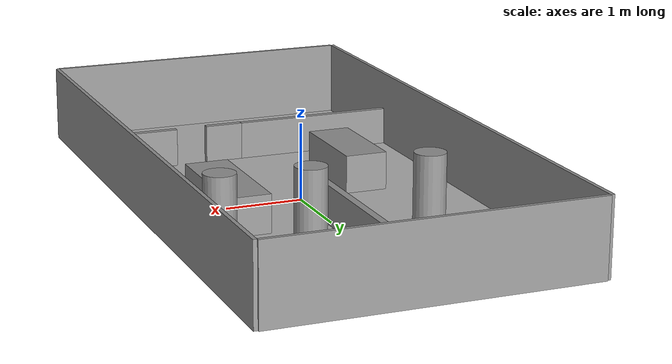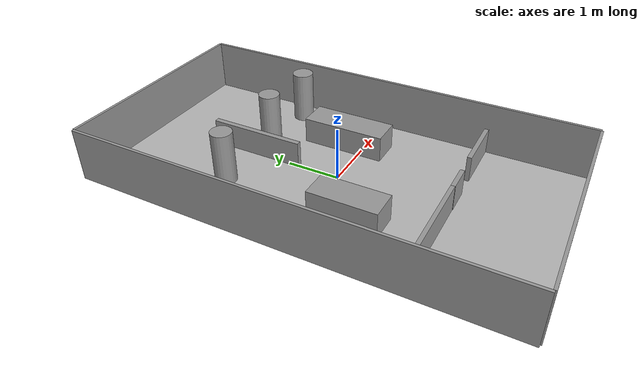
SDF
<sdf version="1.7">
 <world name="patrol_world">
  <light name="sun" type="directional">
   <pose>0 0 10 0 -0 0</pose>
   <diffuse>0.8 0.8 0.8 1</diffuse>
   <specular>0.2 0.2 0.2 1</specular>
   <attenuation>
    <range>1000</range>
    <constant>0.9</constant>
    <linear>0.01</linear>
    <quadratic>0.001</quadratic>
   </attenuation>
   <direction>-0.5 0.1 -0.9</direction>
   <spot><inner_angle>0</inner_angle><outer_angle>0</outer_angle><falloff>0</falloff></spot>
  </light>
  <model name="ground_plane">
   <static>1</static>
   <link name="link">
    <collision name="collision">
     <geometry><plane><normal>0 0 1</normal><size>100 100</size></plane></geometry>
     <surface>
      <contact><collide_bitmask>65535</collide_bitmask></contact>
      <friction><ode><mu>100</mu><mu2>50</mu2></ode></friction>
     </surface>
    </collision>
    <visual name="visual">
     <cast_shadows>0</cast_shadows>
     <geometry><box><size>4.11667 8.06667 0.01</size></box></geometry>
     <material>
      <script>
       <uri>/home/dongyanqi/catkin_ws/src/simulator_gazebo/materials/scripts/patrol_region_map.material</uri>
       <name>GroundPlane/Image/patrol</name>
      </script>
     </material>
    </visual>
   </link>
  </model>
  <gravity>0 0 -9.8</gravity>
  <magnetic_field>6e-06 2.3e-05 -4.2e-05</magnetic_field>
  <atmosphere type="adiabatic"/>
  <physics type="ode">
   <max_step_size>0.001</max_step_size>
   <real_time_factor>1</real_time_factor>
   <real_time_update_rate>1000</real_time_update_rate>
  </physics>
  <scene><ambient>0.4 0.4 0.4 1</ambient><background>0.7 0.7 0.7 1</background><shadows>1</shadows></scene>
  <spherical_coordinates>
   <surface_model>EARTH_WGS84</surface_model>
   <latitude_deg>0</latitude_deg>
   <longitude_deg>0</longitude_deg>
   <elevation>0</elevation>
   <heading_deg>0</heading_deg>
  </spherical_coordinates>
  <model name="Box_0">
   <pose>0.310021 -2.09681 0 4e-06 -0 -1.6e-05</pose>
   <link name="Box_0_link">
    <collision name="Box_0_Collision">
     <pose>0 0 0.25 0 -0 0</pose>
     <geometry><box><size>0.502388 0.08363 0.5</size></box></geometry>
    </collision>
    <visual name="Box_0_Visual">
     <pose>0 0 0.25 0 -0 0</pose>
     <geometry><box><size>0.502388 0.08363 0.5</size></box></geometry>
     <material>
      <script><uri>file://media/materials/scripts/gazebo.material</uri><name>Gazebo/Grey</name></script>
      <ambient>1 1 1 1</ambient>
     </material>
     <meta><layer>0</layer></meta>
    </visual>
    <inertial>
     <inertia><ixx>1</ixx><ixy>0</ixy><ixz>0</ixz><iyy>1</iyy><iyz>0</iyz><izz>1</izz></inertia>
     <mass>1</mass>
    </inertial>
   </link>
  </model>
  <model name="Box_1">
   <pose>-1.00016 -2.09377 1e-06 -1.7e-05 -0 3e-06</pose>
   <link name="Box_1_link">
    <collision name="Box_1_Collision">
     <pose>0 0 0.25 0 -0 0</pose>
     <geometry><box><size>2.11796 0.076717 0.5</size></box></geometry>
    </collision>
    <visual name="Box_1_Visual">
     <pose>0 0 0.25 0 -0 0</pose>
     <geometry><box><size>2.11796 0.076717 0.5</size></box></geometry>
     <material>
      <script><uri>file://media/materials/scripts/gazebo.material</uri><name>Gazebo/Grey</name></script>
      <ambient>1 1 1 1</ambient>
     </material>
     <meta><layer>0</layer></meta>
    </visual>
    <inertial>
     <inertia><ixx>1</ixx><ixy>0</ixy><ixz>0</ixz><iyy>1</iyy><iyz>0</iyz><izz>1</izz></inertia>
     <mass>1</mass>
    </inertial>
   </link>
  </model>
  <model name="Box_2">
   <pose>1.51953 -2.08743 0 3e-06 -0 0</pose>
   <link name="Box_2_link">
    <collision name="Box_2_Collision">
     <pose>0 0 0.25 0 -0 0</pose>
     <geometry><box><size>1.07998 0.084133 0.5</size></box></geometry>
    </collision>
    <visual name="Box_2_Visual">
     <pose>0 0 0.25 0 -0 0</pose>
     <geometry><box><size>1.07998 0.084133 0.5</size></box></geometry>
     <material>
      <script><uri>file://media/materials/scripts/gazebo.material</uri><name>Gazebo/Grey</name></script>
      <ambient>1 1 1 1</ambient>
     </material>
     <meta><layer>0</layer></meta>
    </visual>
    <inertial>
     <inertia><ixx>1</ixx><ixy>0</ixy><ixz>0</ixz><iyy>1</iyy><iyz>0</iyz><izz>1</izz></inertia>
     <mass>1</mass>
    </inertial>
   </link>
  </model>
  <model name="Box_3">
   <pose>-0.914501 -0.675263 -0 0 -0 0</pose>
   <link name="Box_3_link">
    <collision name="Box_3_Collision">
     <pose>0 0 0.25 0 -0 0</pose>
     <geometry><box><size>0.554554 1.28166 0.5</size></box></geometry>
    </collision>
    <visual name="Box_3_Visual">
     <pose>0 0 0.25 0 -0 0</pose>
     <geometry><box><size>0.554554 1.28166 0.5</size></box></geometry>
     <material>
      <script><uri>file://media/materials/scripts/gazebo.material</uri><name>Gazebo/Grey</name></script>
      <ambient>1 1 1 1</ambient>
     </material>
     <meta><layer>0</layer></meta>
    </visual>
    <inertial>
     <inertia><ixx>1</ixx><ixy>0</ixy><ixz>0</ixz><iyy>1</iyy><iyz>0</iyz><izz>1</izz></inertia>
     <mass>1</mass>
    </inertial>
   </link>
  </model>
  <model name="Box_4">
   <pose>1.10544 0.333134 -0 0 -0 0</pose>
   <link name="Box_4_link">
    <collision name="Box_4_Collision">
     <pose>0 0 0.25 0 -0 0</pose>
     <geometry><box><size>0.56341 1.58116 0.5</size></box></geometry>
    </collision>
    <visual name="Box_4_Visual">
     <pose>0 0 0.25 0 -0 0</pose>
     <geometry><box><size>0.56341 1.58116 0.5</size></box></geometry>
     <material>
      <script><uri>file://media/materials/scripts/gazebo.material</uri><name>Gazebo/Grey</name></script>
      <ambient>1 1 1 1</ambient>
     </material>
     <meta><layer>0</layer></meta>
    </visual>
    <inertial>
     <inertia><ixx>1</ixx><ixy>0</ixy><ixz>0</ixz><iyy>1</iyy><iyz>0</iyz><izz>1</izz></inertia>
     <mass>1</mass>
    </inertial>
   </link>
  </model>
  <model name="Box_5">
   <pose>0.014986 1.71319 -0 0 -1e-06 0</pose>
   <link name="Box_5_link">
    <collision name="Box_5_Collision">
     <pose>0 0 0.25 0 -0 0</pose>
     <geometry><box><size>0.097486 1.83034 0.5</size></box></geometry>
    </collision>
    <visual name="Box_5_Visual">
     <pose>0 0 0.25 0 -0 0</pose>
     <geometry><box><size>0.097486 1.83034 0.5</size></box></geometry>
     <material>
      <script><uri>file://media/materials/scripts/gazebo.material</uri><name>Gazebo/Grey</name></script>
      <ambient>1 1 1 1</ambient>
     </material>
     <meta><layer>0</layer></meta>
    </visual>
    <inertial>
     <inertia><ixx>1</ixx><ixy>0</ixy><ixz>0</ixz><iyy>1</iyy><iyz>0</iyz><izz>1</izz></inertia>
     <mass>1</mass>
    </inertial>
   </link>
  </model>
  <model name="Boundary_0">
   <pose>0.003338 -4.02536 0 7e-06 -0 5e-06</pose>
   <link name="Boundary_0_link">
    <collision name="Boundary_0_Collision">
     <pose>0 0 0.5 0 -0 0</pose>
     <geometry><box><size>4.13523 0.05 1</size></box></geometry>
    </collision>
    <visual name="Boundary_0_Visual">
     <pose>0 0 0.5 0 -0 0</pose>
     <geometry><box><size>4.13523 0.05 1</size></box></geometry>
     <material>
      <script><uri>file://media/materials/scripts/gazebo.material</uri><name>Gazebo/Grey</name></script>
      <ambient>1 1 1 1</ambient>
     </material>
     <meta><layer>0</layer></meta>
    </visual>
    <inertial>
     <inertia><ixx>1</ixx><ixy>0</ixy><ixz>0</ixz><iyy>1</iyy><iyz>0</iyz><izz>1</izz></inertia>
     <mass>1</mass>
    </inertial>
   </link>
  </model>
  <model name="Boundary_1">
   <pose>2.09614 0.001196 1e-06 0 -5.8e-05 -1.1e-05</pose>
   <link name="Boundary_1_link">
    <collision name="Boundary_1_Collision">
     <pose>0 0 0.5 0 -0 0</pose>
     <geometry><box><size>0.05 8.0531 1</size></box></geometry>
    </collision>
    <visual name="Boundary_1_Visual">
     <pose>0 0 0.5 0 -0 0</pose>
     <geometry><box><size>0.05 8.0531 1</size></box></geometry>
     <material>
      <script><uri>file://media/materials/scripts/gazebo.material</uri><name>Gazebo/Grey</name></script>
      <ambient>1 1 1 1</ambient>
     </material>
     <meta><layer>0</layer></meta>
    </visual>
    <inertial>
     <inertia><ixx>1</ixx><ixy>0</ixy><ixz>0</ixz><iyy>1</iyy><iyz>0</iyz><izz>1</izz></inertia>
     <mass>1</mass>
    </inertial>
   </link>
  </model>
  <model name="Boundary_2">
   <pose>0.00341 4.02775 0 -1.2e-05 0 1e-06</pose>
   <link name="Boundary_2_link">
    <collision name="Boundary_2_Collision">
     <pose>0 0 0.5 0 -0 0</pose>
     <geometry><box><size>4.13523 0.05 1</size></box></geometry>
    </collision>
    <visual name="Boundary_2_Visual">
     <pose>0 0 0.5 0 -0 0</pose>
     <geometry><box><size>4.13523 0.05 1</size></box></geometry>
     <material>
      <script><uri>file://media/materials/scripts/gazebo.material</uri><name>Gazebo/Grey</name></script>
      <ambient>1 1 1 1</ambient>
     </material>
     <meta><layer>0</layer></meta>
    </visual>
    <inertial>
     <inertia><ixx>1</ixx><ixy>0</ixy><ixz>0</ixz><iyy>1</iyy><iyz>0</iyz><izz>1</izz></inertia>
     <mass>1</mass>
    </inertial>
   </link>
  </model>
  <model name="Boundary_3">
   <pose>-2.08938 0.001197 3e-06 0 -0.0001 -9e-06</pose>
   <link name="Boundary_3_link">
    <collision name="Boundary_3_Collision">
     <pose>0 0 0.5 0 -0 0</pose>
     <geometry><box><size>0.05 8.0531 1</size></box></geometry>
    </collision>
    <visual name="Boundary_3_Visual">
     <pose>0 0 0.5 0 -0 0</pose>
     <geometry><box><size>0.05 8.0531 1</size></box></geometry>
     <material>
      <script><uri>file://media/materials/scripts/gazebo.material</uri><name>Gazebo/Grey</name></script>
      <ambient>1 1 1 1</ambient>
     </material>
     <meta><layer>0</layer></meta>
    </visual>
    <inertial>
     <inertia><ixx>1</ixx><ixy>0</ixy><ixz>0</ixz><iyy>1</iyy><iyz>0</iyz><izz>1</izz></inertia>
     <mass>1</mass>
    </inertial>
   </link>
  </model>
  <model name="unit_cylinder">
   <link name="link">
    <inertial>
     <mass>1</mass>
     <inertia><ixx>0.145833</ixx><ixy>0</ixy><ixz>0</ixz><iyy>0.145833</iyy><iyz>0</iyz><izz>0.125</izz></inertia>
     <pose>0 0 0.5 0 -0 0</pose>
    </inertial>
    <visual name="visual">
     <geometry><cylinder><radius>0.2</radius><length>1</length></cylinder></geometry>
     <material>
      <script><name>Gazebo/Grey</name><uri>file://media/materials/scripts/gazebo.material</uri></script>
      <shader type="pixel"><normal_map>__default__</normal_map></shader>
      <ambient>0.3 0.3 0.3 1</ambient>
      <diffuse>0.7 0.7 0.7 1</diffuse>
      <specular>0.01 0.01 0.01 1</specular>
      <emissive>0 0 0 1</emissive>
     </material>
    </visual>
    <collision name="collision">
     <geometry><cylinder><radius>0.2</radius><length>1</length></cylinder></geometry>
     <surface>
      <friction>
       <ode><mu>1</mu><mu2>1</mu2><fdir1>0 0 0</fdir1><slip1>0</slip1><slip2>0</slip2></ode>
       <torsional>
        <coefficient>1</coefficient>
        <patch_radius>0</patch_radius>
        <surface_radius>0</surface_radius>
        <use_patch_radius>1</use_patch_radius>
        <ode><slip>0</slip></ode>
       </torsional>
      </friction>
      <bounce><restitution_coefficient>0</restitution_coefficient><threshold>1e+06</threshold></bounce>
      <contact>
       <collide_without_contact>0</collide_without_contact>
       <collide_without_contact_bitmask>1</collide_without_contact_bitmask>
       <collide_bitmask>1</collide_bitmask>
       <ode>
        <soft_cfm>0</soft_cfm>
        <soft_erp>0.2</soft_erp>
        <kp>1e+13</kp>
        <kd>1</kd>
        <max_vel>0.01</max_vel>
        <min_depth>0</min_depth>
       </ode>
       <bullet>
        <split_impulse>1</split_impulse>
        <split_impulse_penetration_threshold>-0.01</split_impulse_penetration_threshold>
        <soft_cfm>0</soft_cfm>
        <soft_erp>0.2</soft_erp>
        <kp>1e+13</kp>
        <kd>1</kd>
       </bullet>
      </contact>
     </surface>
    </collision>
   </link>
   <static>0</static>
   <pose>0.574497 1.76469 0.49999 0 -0 -0.000132</pose>
  </model>
  <model name="unit_cylinder_0">
   <link name="link">
    <inertial>
     <mass>1</mass>
     <inertia><ixx>0.145833</ixx><ixy>0</ixy><ixz>0</ixz><iyy>0.145833</iyy><iyz>0</iyz><izz>0.125</izz></inertia>
     <pose>0 0 0.5 0 -0 0</pose>
    </inertial>
    <visual name="visual">
     <geometry><cylinder><radius>0.2</radius><length>1</length></cylinder></geometry>
     <material>
      <script><name>Gazebo/Grey</name><uri>file://media/materials/scripts/gazebo.material</uri></script>
      <shader type="pixel"><normal_map>__default__</normal_map></shader>
      <ambient>0.3 0.3 0.3 1</ambient>
      <diffuse>0.7 0.7 0.7 1</diffuse>
      <specular>0.01 0.01 0.01 1</specular>
      <emissive>0 0 0 1</emissive>
     </material>
    </visual>
    <collision name="collision">
     <geometry><cylinder><radius>0.2</radius><length>1</length></cylinder></geometry>
     <surface>
      <friction>
       <ode><mu>1</mu><mu2>1</mu2><fdir1>0 0 0</fdir1><slip1>0</slip1><slip2>0</slip2></ode>
       <torsional>
        <coefficient>1</coefficient>
        <patch_radius>0</patch_radius>
        <surface_radius>0</surface_radius>
        <use_patch_radius>1</use_patch_radius>
        <ode><slip>0</slip></ode>
       </torsional>
      </friction>
      <bounce><restitution_coefficient>0</restitution_coefficient><threshold>1e+06</threshold></bounce>
      <contact>
       <collide_without_contact>0</collide_without_contact>
       <collide_without_contact_bitmask>1</collide_without_contact_bitmask>
       <collide_bitmask>1</collide_bitmask>
       <ode>
        <soft_cfm>0</soft_cfm>
        <soft_erp>0.2</soft_erp>
        <kp>1e+13</kp>
        <kd>1</kd>
        <max_vel>0.01</max_vel>
        <min_depth>0</min_depth>
       </ode>
       <bullet>
        <split_impulse>1</split_impulse>
        <split_impulse_penetration_threshold>-0.01</split_impulse_penetration_threshold>
        <soft_cfm>0</soft_cfm>
        <soft_erp>0.2</soft_erp>
        <kp>1e+13</kp>
        <kd>1</kd>
       </bullet>
      </contact>
     </surface>
    </collision>
   </link>
   <static>0</static>
   <pose>1.65563 1.65241 0.5 0 0 -8.3e-05</pose>
  </model>
  <model name="unit_cylinder_1">
   <link name="link">
    <inertial>
     <mass>1</mass>
     <inertia><ixx>0.145833</ixx><ixy>0</ixy><ixz>0</ixz><iyy>0.145833</iyy><iyz>0</iyz><izz>0.125</izz></inertia>
     <pose>0 0 0.5 0 -0 0</pose>
    </inertial>
    <visual name="visual">
     <geometry><cylinder><radius>0.2</radius><length>1</length></cylinder></geometry>
     <material>
      <script><name>Gazebo/Grey</name><uri>file://media/materials/scripts/gazebo.material</uri></script>
      <shader type="pixel"><normal_map>__default__</normal_map></shader>
      <ambient>0.3 0.3 0.3 1</ambient>
      <diffuse>0.7 0.7 0.7 1</diffuse>
      <specular>0.01 0.01 0.01 1</specular>
      <emissive>0 0 0 1</emissive>
     </material>
    </visual>
    <collision name="collision">
     <geometry><cylinder><radius>0.2</radius><length>1</length></cylinder></geometry>
     <surface>
      <friction>
       <ode><mu>1</mu><mu2>1</mu2><fdir1>0 0 0</fdir1><slip1>0</slip1><slip2>0</slip2></ode>
       <torsional>
        <coefficient>1</coefficient>
        <patch_radius>0</patch_radius>
        <surface_radius>0</surface_radius>
        <use_patch_radius>1</use_patch_radius>
        <ode><slip>0</slip></ode>
       </torsional>
      </friction>
      <bounce><restitution_coefficient>0</restitution_coefficient><threshold>1e+06</threshold></bounce>
      <contact>
       <collide_without_contact>0</collide_without_contact>
       <collide_without_contact_bitmask>1</collide_without_contact_bitmask>
       <collide_bitmask>1</collide_bitmask>
       <ode>
        <soft_cfm>0</soft_cfm>
        <soft_erp>0.2</soft_erp>
        <kp>1e+13</kp>
        <kd>1</kd>
        <max_vel>0.01</max_vel>
        <min_depth>0</min_depth>
       </ode>
       <bullet>
        <split_impulse>1</split_impulse>
        <split_impulse_penetration_threshold>-0.01</split_impulse_penetration_threshold>
        <soft_cfm>0</soft_cfm>
        <soft_erp>0.2</soft_erp>
        <kp>1e+13</kp>
        <kd>1</kd>
       </bullet>
      </contact>
     </surface>
    </collision>
   </link>
   <static>0</static>
   <pose>-0.958848 1.74657 0.5 0 0 -3.5e-05</pose>
  </model>
 </world>
</sdf>
